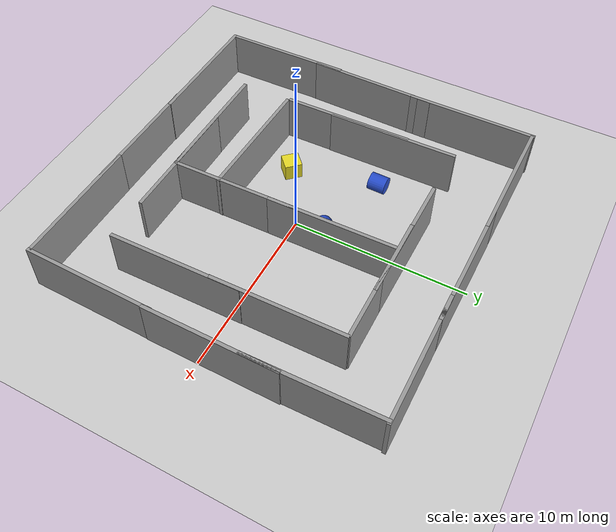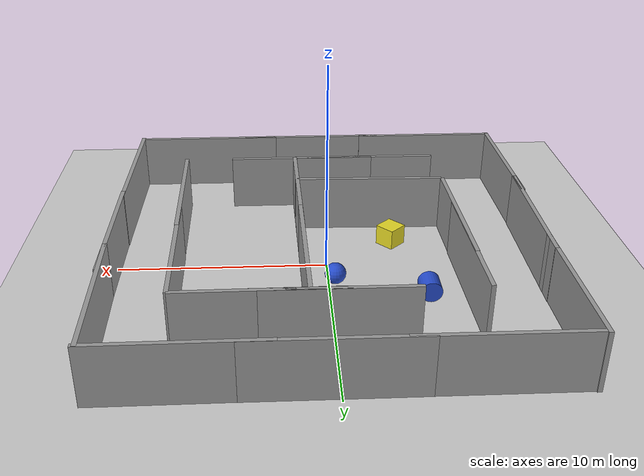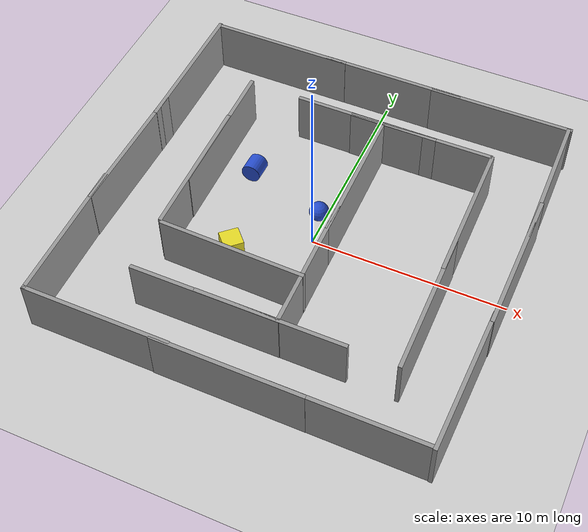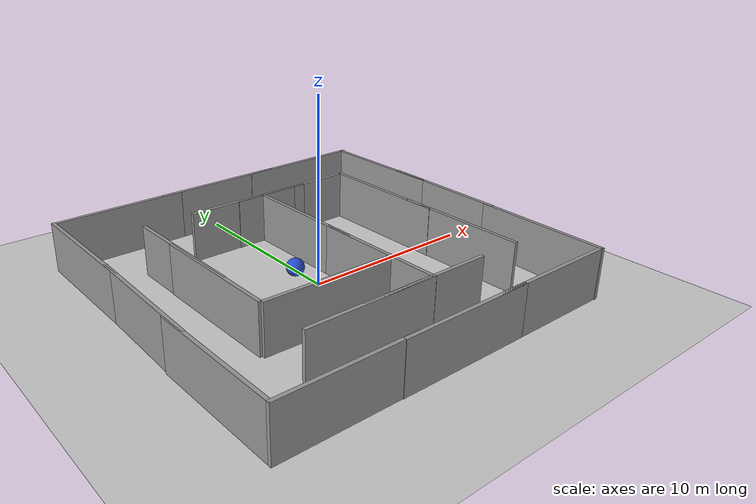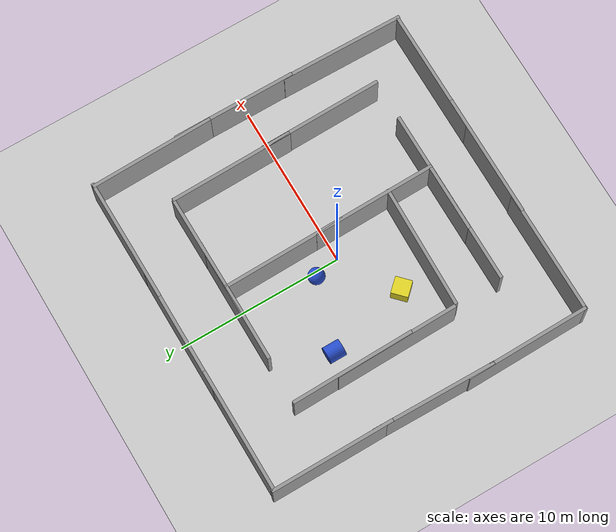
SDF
<sdf version="1.6">
 <world name="default">
  <light name="sun" type="directional">
   <pose>0 0 10 0 -0 0</pose>
   <diffuse>0.8 0.8 0.8 1</diffuse>
   <specular>0.2 0.2 0.2 1</specular>
   <attenuation>
    <range>1000</range>
    <constant>0.9</constant>
    <linear>0.01</linear>
    <quadratic>0.001</quadratic>
   </attenuation>
   <direction>-0.5 0.1 -0.9</direction>
  </light>
  <model name="ground_plane">
   <static>1</static>
   <link name="link">
    <collision name="collision">
     <geometry><plane><normal>0 0 1</normal><size>100 100</size></plane></geometry>
     <surface><friction><ode><mu>100</mu><mu2>50</mu2></ode></friction></surface>
    </collision>
    <visual name="visual">
     <cast_shadows>0</cast_shadows>
     <geometry><plane><normal>0 0 1</normal><size>100 100</size></plane></geometry>
     <material>
      <script><uri>file://media/materials/scripts/gazebo.material</uri><name>Gazebo/Grey</name></script>
     </material>
    </visual>
    <velocity_decay><linear>0</linear><angular>0</angular></velocity_decay>
   </link>
  </model>
  <physics name="default_physics" default="0" type="ode">
   <max_step_size>0.001</max_step_size>
   <real_time_factor>1</real_time_factor>
   <real_time_update_rate>1000</real_time_update_rate>
  </physics>
  <scene><ambient>0.4 0.4 0.4 1</ambient><background>0.7 0.7 0.7 1</background><shadows>1</shadows></scene>
  <spherical_coordinates>
   <surface_model>EARTH_WGS84</surface_model>
   <latitude_deg>0</latitude_deg>
   <longitude_deg>0</longitude_deg>
   <elevation>0</elevation>
   <heading_deg>0</heading_deg>
  </spherical_coordinates>
  <model name="grey_wall">
   <static>1</static>
   <link name="link">
    <pose>0 0 1.4 0 -0 0</pose>
    <collision name="collision"><geometry><box><size>7.5 0.2 2.8</size></box></geometry></collision>
    <visual name="visual">
     <cast_shadows>0</cast_shadows>
     <geometry><box><size>7.5 0.2 2.8</size></box></geometry>
     <material>
      <script>
       <uri>model://grey_wall/materials/scripts</uri>
       <uri>model://grey_wall/materials/textures</uri>
       <name>vrc/grey_wall</name>
      </script>
     </material>
    </visual>
    <velocity_decay><linear>0</linear><angular>0</angular></velocity_decay>
   </link>
   <pose>-6.15914 9.7448 0 0 -0 0</pose>
  </model>
  <model name="grey_wall_0">
   <static>1</static>
   <link name="link">
    <pose>0 0 1.4 0 -0 0</pose>
    <collision name="collision"><geometry><box><size>7.5 0.2 2.8</size></box></geometry></collision>
    <visual name="visual">
     <cast_shadows>0</cast_shadows>
     <geometry><box><size>7.5 0.2 2.8</size></box></geometry>
     <material>
      <script>
       <uri>model://grey_wall/materials/scripts</uri>
       <uri>model://grey_wall/materials/textures</uri>
       <name>vrc/grey_wall</name>
      </script>
     </material>
    </visual>
    <velocity_decay><linear>0</linear><angular>0</angular></velocity_decay>
   </link>
   <pose>-6.21165 -9.703 0 0 -0 0</pose>
  </model>
  <model name="grey_wall_1">
   <static>1</static>
   <link name="link">
    <pose>0 0 1.4 0 -0 0</pose>
    <collision name="collision"><geometry><box><size>7.5 0.2 2.8</size></box></geometry></collision>
    <visual name="visual">
     <cast_shadows>0</cast_shadows>
     <geometry><box><size>7.5 0.2 2.8</size></box></geometry>
     <material>
      <script>
       <uri>model://grey_wall/materials/scripts</uri>
       <uri>model://grey_wall/materials/textures</uri>
       <name>vrc/grey_wall</name>
      </script>
     </material>
    </visual>
    <velocity_decay><linear>0</linear><angular>0</angular></velocity_decay>
   </link>
   <pose>-9.91604 -6.01841 0 0 0 -1.55564</pose>
  </model>
  <model name="grey_wall_2">
   <static>1</static>
   <link name="link">
    <pose>0 0 1.4 0 -0 0</pose>
    <collision name="collision"><geometry><box><size>7.5 0.2 2.8</size></box></geometry></collision>
    <visual name="visual">
     <cast_shadows>0</cast_shadows>
     <geometry><box><size>7.5 0.2 2.8</size></box></geometry>
     <material>
      <script>
       <uri>model://grey_wall/materials/scripts</uri>
       <uri>model://grey_wall/materials/textures</uri>
       <name>vrc/grey_wall</name>
      </script>
     </material>
    </visual>
    <velocity_decay><linear>0</linear><angular>0</angular></velocity_decay>
   </link>
   <pose>-2.36047 -6.71034 0 0 -0 0</pose>
  </model>
  <model name="grey_wall_3">
   <static>1</static>
   <link name="link">
    <pose>0 0 1.4 0 -0 0</pose>
    <collision name="collision"><geometry><box><size>7.5 0.2 2.8</size></box></geometry></collision>
    <visual name="visual">
     <cast_shadows>0</cast_shadows>
     <geometry><box><size>7.5 0.2 2.8</size></box></geometry>
     <material>
      <script>
       <uri>model://grey_wall/materials/scripts</uri>
       <uri>model://grey_wall/materials/textures</uri>
       <name>vrc/grey_wall</name>
      </script>
     </material>
    </visual>
    <velocity_decay><linear>0</linear><angular>0</angular></velocity_decay>
   </link>
   <pose>9.84269 6.09226 0.00212 0 0 -1.54587</pose>
  </model>
  <model name="grey_wall_4">
   <static>1</static>
   <link name="link">
    <pose>0 0 1.4 0 -0 0</pose>
    <collision name="collision"><geometry><box><size>7.5 0.2 2.8</size></box></geometry></collision>
    <visual name="visual">
     <cast_shadows>0</cast_shadows>
     <geometry><box><size>7.5 0.2 2.8</size></box></geometry>
     <material>
      <script>
       <uri>model://grey_wall/materials/scripts</uri>
       <uri>model://grey_wall/materials/textures</uri>
       <name>vrc/grey_wall</name>
      </script>
     </material>
    </visual>
    <velocity_decay><linear>0</linear><angular>0</angular></velocity_decay>
   </link>
   <pose>6.04797 -9.73342 0 0 -0 0</pose>
  </model>
  <model name="grey_wall_5">
   <static>1</static>
   <link name="link">
    <pose>0 0 1.4 0 -0 0</pose>
    <collision name="collision"><geometry><box><size>7.5 0.2 2.8</size></box></geometry></collision>
    <visual name="visual">
     <cast_shadows>0</cast_shadows>
     <geometry><box><size>7.5 0.2 2.8</size></box></geometry>
     <material>
      <script>
       <uri>model://grey_wall/materials/scripts</uri>
       <uri>model://grey_wall/materials/textures</uri>
       <name>vrc/grey_wall</name>
      </script>
     </material>
    </visual>
    <velocity_decay><linear>0</linear><angular>0</angular></velocity_decay>
   </link>
   <pose>-6.24263 -0.010871 0 0 -0 1.58991</pose>
  </model>
  <model name="grey_wall_6">
   <static>1</static>
   <link name="link">
    <pose>0 0 1.4 0 -0 0</pose>
    <collision name="collision"><geometry><box><size>7.5 0.2 2.8</size></box></geometry></collision>
    <visual name="visual">
     <cast_shadows>0</cast_shadows>
     <geometry><box><size>7.5 0.2 2.8</size></box></geometry>
     <material>
      <script>
       <uri>model://grey_wall/materials/scripts</uri>
       <uri>model://grey_wall/materials/textures</uri>
       <name>vrc/grey_wall</name>
      </script>
     </material>
    </visual>
    <velocity_decay><linear>0</linear><angular>0</angular></velocity_decay>
   </link>
   <pose>0.235191 9.75265 0 0 -0 0</pose>
  </model>
  <gravity>0 0 -9.8</gravity>
  <magnetic_field>6e-06 2.3e-05 -4.2e-05</magnetic_field>
  <atmosphere type="adiabatic"/>
  <audio><device>default</device></audio>
  <model name="grey_wall_1_clone">
   <static>1</static>
   <link name="link">
    <pose>0 0 1.4 0 -0 0</pose>
    <collision name="collision"><geometry><box><size>7.5 0.2 2.8</size></box></geometry></collision>
    <visual name="visual">
     <cast_shadows>0</cast_shadows>
     <geometry><box><size>7.5 0.2 2.8</size></box></geometry>
     <material>
      <script>
       <uri>model://grey_wall/materials/scripts</uri>
       <uri>model://grey_wall/materials/textures</uri>
       <name>vrc/grey_wall</name>
      </script>
     </material>
    </visual>
    <velocity_decay><linear>0</linear><angular>0</angular></velocity_decay>
   </link>
   <pose>-9.88284 -0.130124 0 0 0 -1.58359</pose>
  </model>
  <model name="grey_wall_3_clone">
   <static>1</static>
   <link name="link">
    <pose>0 0 1.4 0 -0 0</pose>
    <collision name="collision"><geometry><box><size>7.5 0.2 2.8</size></box></geometry></collision>
    <visual name="visual">
     <cast_shadows>0</cast_shadows>
     <geometry><box><size>7.5 0.2 2.8</size></box></geometry>
     <material>
      <script>
       <uri>model://grey_wall/materials/scripts</uri>
       <uri>model://grey_wall/materials/textures</uri>
       <name>vrc/grey_wall</name>
      </script>
     </material>
    </visual>
    <velocity_decay><linear>0</linear><angular>0</angular></velocity_decay>
   </link>
   <pose>9.93687 0.821066 0.00212 0 0 -1.57102</pose>
  </model>
  <model name="grey_wall_1_clone_clone">
   <static>1</static>
   <link name="link">
    <pose>0 0 1.4 0 -0 0</pose>
    <collision name="collision"><geometry><box><size>7.5 0.2 2.8</size></box></geometry></collision>
    <visual name="visual">
     <cast_shadows>0</cast_shadows>
     <geometry><box><size>7.5 0.2 2.8</size></box></geometry>
     <material>
      <script>
       <uri>model://grey_wall/materials/scripts</uri>
       <uri>model://grey_wall/materials/textures</uri>
       <name>vrc/grey_wall</name>
      </script>
     </material>
    </visual>
    <velocity_decay><linear>0</linear><angular>0</angular></velocity_decay>
   </link>
   <pose>-9.8631 6.14852 0 0 0 -1.56529</pose>
  </model>
  <model name="grey_wall_1_clone_clone_0">
   <static>1</static>
   <link name="link">
    <pose>0 0 1.4 0 -0 0</pose>
    <collision name="collision"><geometry><box><size>7.5 0.2 2.8</size></box></geometry></collision>
    <visual name="visual">
     <cast_shadows>0</cast_shadows>
     <geometry><box><size>7.5 0.2 2.8</size></box></geometry>
     <material>
      <script>
       <uri>model://grey_wall/materials/scripts</uri>
       <uri>model://grey_wall/materials/textures</uri>
       <name>vrc/grey_wall</name>
      </script>
     </material>
    </visual>
    <velocity_decay><linear>0</linear><angular>0</angular></velocity_decay>
   </link>
   <pose>6.18211 9.75952 0 0 0 -3.13624</pose>
  </model>
  <model name="grey_wall_1_clone_clone_1">
   <static>1</static>
   <link name="link">
    <pose>0 0 1.4 0 -0 0</pose>
    <collision name="collision"><geometry><box><size>7.5 0.2 2.8</size></box></geometry></collision>
    <visual name="visual">
     <cast_shadows>0</cast_shadows>
     <geometry><box><size>7.5 0.2 2.8</size></box></geometry>
     <material>
      <script>
       <uri>model://grey_wall/materials/scripts</uri>
       <uri>model://grey_wall/materials/textures</uri>
       <name>vrc/grey_wall</name>
      </script>
     </material>
    </visual>
    <velocity_decay><linear>0</linear><angular>0</angular></velocity_decay>
   </link>
   <pose>9.86952 -6.11438 0 0 0 -1.58359</pose>
  </model>
  <model name="grey_wall_1_clone_clone_2">
   <static>1</static>
   <link name="link">
    <pose>0 0 1.4 0 -0 0</pose>
    <collision name="collision"><geometry><box><size>7.5 0.2 2.8</size></box></geometry></collision>
    <visual name="visual">
     <cast_shadows>0</cast_shadows>
     <geometry><box><size>7.5 0.2 2.8</size></box></geometry>
     <material>
      <script>
       <uri>model://grey_wall/materials/scripts</uri>
       <uri>model://grey_wall/materials/textures</uri>
       <name>vrc/grey_wall</name>
      </script>
     </material>
    </visual>
    <velocity_decay><linear>0</linear><angular>0</angular></velocity_decay>
   </link>
   <pose>0.291242 -9.73574 -0 0 -0 3.14045</pose>
  </model>
  <model name="grey_wall_2_clone">
   <static>1</static>
   <link name="link">
    <pose>0 0 1.4 0 -0 0</pose>
    <collision name="collision"><geometry><box><size>7.5 0.2 2.8</size></box></geometry></collision>
    <visual name="visual">
     <cast_shadows>0</cast_shadows>
     <geometry><box><size>7.5 0.2 2.8</size></box></geometry>
     <material>
      <script>
       <uri>model://grey_wall/materials/scripts</uri>
       <uri>model://grey_wall/materials/textures</uri>
       <name>vrc/grey_wall</name>
      </script>
     </material>
    </visual>
    <velocity_decay><linear>0</linear><angular>0</angular></velocity_decay>
   </link>
   <pose>0.159837 6.38955 0 0 -0 0</pose>
  </model>
  <model name="grey_wall_5_clone">
   <static>1</static>
   <link name="link">
    <pose>0 0 1.4 0 -0 0</pose>
    <collision name="collision"><geometry><box><size>7.5 0.2 2.8</size></box></geometry></collision>
    <visual name="visual">
     <cast_shadows>0</cast_shadows>
     <geometry><box><size>7.5 0.2 2.8</size></box></geometry>
     <material>
      <script>
       <uri>model://grey_wall/materials/scripts</uri>
       <uri>model://grey_wall/materials/textures</uri>
       <name>vrc/grey_wall</name>
      </script>
     </material>
    </visual>
    <velocity_decay><linear>0</linear><angular>0</angular></velocity_decay>
   </link>
   <pose>-6.2665 2.77185 0 0 -0 1.58991</pose>
  </model>
  <model name="grey_wall_5_clone_0">
   <static>1</static>
   <link name="link">
    <pose>0 0 1.4 0 -0 0</pose>
    <collision name="collision"><geometry><box><size>7.5 0.2 2.8</size></box></geometry></collision>
    <visual name="visual">
     <cast_shadows>0</cast_shadows>
     <geometry><box><size>7.5 0.2 2.8</size></box></geometry>
     <material>
      <script>
       <uri>model://grey_wall/materials/scripts</uri>
       <uri>model://grey_wall/materials/textures</uri>
       <name>vrc/grey_wall</name>
      </script>
     </material>
    </visual>
    <velocity_decay><linear>0</linear><angular>0</angular></velocity_decay>
   </link>
   <pose>1.23701 -3.05596 0 0 -0 1.58991</pose>
  </model>
  <model name="grey_wall_5_clone_1">
   <static>1</static>
   <link name="link">
    <pose>0 0 1.4 0 -0 0</pose>
    <collision name="collision"><geometry><box><size>7.5 0.2 2.8</size></box></geometry></collision>
    <visual name="visual">
     <cast_shadows>0</cast_shadows>
     <geometry><box><size>7.5 0.2 2.8</size></box></geometry>
     <material>
      <script>
       <uri>model://grey_wall/materials/scripts</uri>
       <uri>model://grey_wall/materials/textures</uri>
       <name>vrc/grey_wall</name>
      </script>
     </material>
    </visual>
    <velocity_decay><linear>0</linear><angular>0</angular></velocity_decay>
   </link>
   <pose>-2.37707 -3.91438 0 0 0 -0.023142</pose>
  </model>
  <model name="grey_wall_5_clone_2">
   <static>1</static>
   <link name="link">
    <pose>0 0 1.4 0 -0 0</pose>
    <collision name="collision"><geometry><box><size>7.5 0.2 2.8</size></box></geometry></collision>
    <visual name="visual">
     <cast_shadows>0</cast_shadows>
     <geometry><box><size>7.5 0.2 2.8</size></box></geometry>
     <material>
      <script>
       <uri>model://grey_wall/materials/scripts</uri>
       <uri>model://grey_wall/materials/textures</uri>
       <name>vrc/grey_wall</name>
      </script>
     </material>
    </visual>
    <velocity_decay><linear>0</linear><angular>0</angular></velocity_decay>
   </link>
   <pose>6.90049 2.70601 0 0 -0 1.58991</pose>
  </model>
  <model name="grey_wall_5_clone_3">
   <static>1</static>
   <link name="link">
    <pose>0 0 1.4 0 -0 0</pose>
    <collision name="collision"><geometry><box><size>7.5 0.2 2.8</size></box></geometry></collision>
    <visual name="visual">
     <cast_shadows>0</cast_shadows>
     <geometry><box><size>7.5 0.2 2.8</size></box></geometry>
     <material>
      <script>
       <uri>model://grey_wall/materials/scripts</uri>
       <uri>model://grey_wall/materials/textures</uri>
       <name>vrc/grey_wall</name>
      </script>
     </material>
    </visual>
    <velocity_decay><linear>0</linear><angular>0</angular></velocity_decay>
   </link>
   <pose>3.08317 6.38861 0 0 -0 0.007398</pose>
  </model>
  <model name="grey_wall_5_clone_4">
   <static>1</static>
   <link name="link">
    <pose>0 0 1.4 0 -0 0</pose>
    <collision name="collision"><geometry><box><size>7.5 0.2 2.8</size></box></geometry></collision>
    <visual name="visual">
     <cast_shadows>0</cast_shadows>
     <geometry><box><size>7.5 0.2 2.8</size></box></geometry>
     <material>
      <script>
       <uri>model://grey_wall/materials/scripts</uri>
       <uri>model://grey_wall/materials/textures</uri>
       <name>vrc/grey_wall</name>
      </script>
     </material>
    </visual>
    <velocity_decay><linear>0</linear><angular>0</angular></velocity_decay>
   </link>
   <pose>1.13091 2.7068 0 0 -0 1.58991</pose>
  </model>
  <model name="grey_wall_5_clone_2_clone">
   <static>1</static>
   <link name="link">
    <pose>0 0 1.4 0 -0 0</pose>
    <collision name="collision"><geometry><box><size>7.5 0.2 2.8</size></box></geometry></collision>
    <visual name="visual">
     <cast_shadows>0</cast_shadows>
     <geometry><box><size>7.5 0.2 2.8</size></box></geometry>
     <material>
      <script>
       <uri>model://grey_wall/materials/scripts</uri>
       <uri>model://grey_wall/materials/textures</uri>
       <name>vrc/grey_wall</name>
      </script>
     </material>
    </visual>
    <velocity_decay><linear>0</linear><angular>0</angular></velocity_decay>
   </link>
   <pose>7.03149 -3.03185 0 0 -0 1.58991</pose>
  </model>
  <model name="grey_wall_2_clone_0">
   <static>1</static>
   <link name="link">
    <pose>0 0 1.4 0 -0 0</pose>
    <collision name="collision"><geometry><box><size>7.5 0.2 2.8</size></box></geometry></collision>
    <visual name="visual">
     <cast_shadows>0</cast_shadows>
     <geometry><box><size>7.5 0.2 2.8</size></box></geometry>
     <material>
      <script>
       <uri>model://grey_wall/materials/scripts</uri>
       <uri>model://grey_wall/materials/textures</uri>
       <name>vrc/grey_wall</name>
      </script>
     </material>
    </visual>
    <velocity_decay><linear>0</linear><angular>0</angular></velocity_decay>
   </link>
   <pose>0.9218 -6.69941 0 0 -0 0</pose>
  </model>
  <light name="user_spot_light_0" type="spot">
   <pose>-0.377616 -5.07779 1 0 -0 0</pose>
   <diffuse>0.5 0.5 0.5 1</diffuse>
   <specular>0.1 0.1 0.1 1</specular>
   <direction>0 0 -1</direction>
   <attenuation>
    <range>20</range>
    <constant>0.5</constant>
    <linear>0.01</linear>
    <quadratic>0.001</quadratic>
   </attenuation>
   <cast_shadows>0</cast_shadows>
   <spot><inner_angle>0.6</inner_angle><outer_angle>1</outer_angle><falloff>1</falloff></spot>
  </light>
  <model name="unit_cylinder_blue">
   <link name="link">
    <inertial>
     <mass>1</mass>
     <inertia><ixx>0.145833</ixx><ixy>0</ixy><ixz>0</ixz><iyy>0.145833</iyy><iyz>0</iyz><izz>0.125</izz></inertia>
    </inertial>
    <pose>0 0 0 1.54704 -0 0</pose>
    <visual name="visual">
     <geometry><cylinder><radius>0.5</radius><length>1</length></cylinder></geometry>
     <material>
      <script><name>Gazebo/Blue</name><uri>file://media/materials/scripts/gazebo.material</uri></script>
      <shader type="vertex"><normal_map>__default__</normal_map></shader>
      <ambient>0 0 1 1</ambient>
      <diffuse>0 0 1 1</diffuse>
      <specular>0.1 0.1 0.1 1</specular>
      <emissive>0 0 0 1</emissive>
     </material>
    </visual>
    <collision name="collision">
     <geometry><cylinder><radius>0.5</radius><length>1</length></cylinder></geometry>
     <surface>
      <friction>
       <ode><mu>1</mu><mu2>1</mu2><fdir1>0 0 0</fdir1><slip1>0</slip1><slip2>0</slip2></ode>
       <torsional>
        <coefficient>1</coefficient>
        <patch_radius>0</patch_radius>
        <surface_radius>0</surface_radius>
        <use_patch_radius>1</use_patch_radius>
        <ode><slip>0</slip></ode>
       </torsional>
      </friction>
      <bounce><restitution_coefficient>0</restitution_coefficient><threshold>1e+06</threshold></bounce>
      <contact>
       <collide_without_contact>0</collide_without_contact>
       <collide_without_contact_bitmask>1</collide_without_contact_bitmask>
       <collide_bitmask>1</collide_bitmask>
       <ode>
        <soft_cfm>0</soft_cfm>
        <soft_erp>0.2</soft_erp>
        <kp>1e+13</kp>
        <kd>1</kd>
        <max_vel>0.01</max_vel>
        <min_depth>0</min_depth>
       </ode>
       <bullet>
        <split_impulse>1</split_impulse>
        <split_impulse_penetration_threshold>-0.01</split_impulse_penetration_threshold>
        <soft_cfm>0</soft_cfm>
        <soft_erp>0.2</soft_erp>
        <kp>1e+13</kp>
        <kd>1</kd>
       </bullet>
      </contact>
     </surface>
    </collision>
   </link>
   <static>0</static>
   <pose>-4.53656 2.90074 0.5 0 -0 0</pose>
  </model>
  <model name="unit_sphere_blue">
   <link name="link">
    <inertial>
     <mass>1</mass>
     <inertia><ixx>0.1</ixx><ixy>0</ixy><ixz>0</ixz><iyy>0.1</iyy><iyz>0</iyz><izz>0.1</izz></inertia>
    </inertial>
    <visual name="visual">
     <geometry><sphere><radius>0.5</radius></sphere></geometry>
     <material>
      <script><name>Gazebo/Blue</name><uri>file://media/materials/scripts/gazebo.material</uri></script>
      <shader type="vertex"><normal_map>__default__</normal_map></shader>
      <ambient>0 0 1 1</ambient>
      <diffuse>0 0 1 1</diffuse>
      <specular>0.1 0.1 0.1 1</specular>
      <emissive>0 0 0 1</emissive>
     </material>
    </visual>
    <collision name="collision">
     <geometry><sphere><radius>0.5</radius></sphere></geometry>
     <surface>
      <friction>
       <ode><mu>1</mu><mu2>1</mu2><fdir1>0 0 0</fdir1><slip1>0</slip1><slip2>0</slip2></ode>
       <torsional>
        <coefficient>1</coefficient>
        <patch_radius>0</patch_radius>
        <surface_radius>0</surface_radius>
        <use_patch_radius>1</use_patch_radius>
        <ode><slip>0</slip></ode>
       </torsional>
      </friction>
      <bounce><restitution_coefficient>0</restitution_coefficient><threshold>1e+06</threshold></bounce>
      <contact>
       <collide_without_contact>0</collide_without_contact>
       <collide_without_contact_bitmask>1</collide_without_contact_bitmask>
       <collide_bitmask>1</collide_bitmask>
       <ode>
        <soft_cfm>0</soft_cfm>
        <soft_erp>0.2</soft_erp>
        <kp>1e+13</kp>
        <kd>1</kd>
        <max_vel>0.01</max_vel>
        <min_depth>0</min_depth>
       </ode>
       <bullet>
        <split_impulse>1</split_impulse>
        <split_impulse_penetration_threshold>-0.01</split_impulse_penetration_threshold>
        <soft_cfm>0</soft_cfm>
        <soft_erp>0.2</soft_erp>
        <kp>1e+13</kp>
        <kd>1</kd>
       </bullet>
      </contact>
     </surface>
    </collision>
   </link>
   <static>0</static>
   <pose>-0.328482 1.55143 0.5 0 -0 0</pose>
  </model>
  <model name="unit_box_yellow">
   <link name="link">
    <inertial>
     <mass>1</mass>
     <inertia>
      <ixx>0.166667</ixx>
      <ixy>0</ixy>
      <ixz>0</ixz>
      <iyy>0.166667</iyy>
      <iyz>0</iyz>
      <izz>0.166667</izz>
     </inertia>
    </inertial>
    <visual name="visual">
     <geometry><box><size>1 1 1</size></box></geometry>
     <material>
      <script><name>Gazebo/Yellow</name><uri>file://media/materials/scripts/gazebo.material</uri></script>
      <shader type="vertex"><normal_map>__default__</normal_map></shader>
      <ambient>1 1 0 1</ambient>
      <diffuse>1 1 0 1</diffuse>
      <emissive>0 0 0 1</emissive>
     </material>
    </visual>
    <collision name="collision">
     <geometry><box><size>1 1 1</size></box></geometry>
     <surface>
      <friction>
       <ode><mu>1</mu><mu2>1</mu2><fdir1>0 0 0</fdir1><slip1>0</slip1><slip2>0</slip2></ode>
       <torsional>
        <coefficient>1</coefficient>
        <patch_radius>0</patch_radius>
        <surface_radius>0</surface_radius>
        <use_patch_radius>1</use_patch_radius>
        <ode><slip>0</slip></ode>
       </torsional>
      </friction>
      <bounce><restitution_coefficient>0</restitution_coefficient><threshold>1e+06</threshold></bounce>
      <contact>
       <collide_without_contact>0</collide_without_contact>
       <collide_without_contact_bitmask>1</collide_without_contact_bitmask>
       <collide_bitmask>1</collide_bitmask>
       <ode>
        <soft_cfm>0</soft_cfm>
        <soft_erp>0.2</soft_erp>
        <kp>1e+13</kp>
        <kd>1</kd>
        <max_vel>0.01</max_vel>
        <min_depth>0</min_depth>
       </ode>
       <bullet>
        <split_impulse>1</split_impulse>
        <split_impulse_penetration_threshold>-0.01</split_impulse_penetration_threshold>
        <soft_cfm>0</soft_cfm>
        <soft_erp>0.2</soft_erp>
        <kp>1e+13</kp>
        <kd>1</kd>
       </bullet>
      </contact>
     </surface>
    </collision>
   </link>
   <static>0</static>
   <pose>-3.37386 -2.10066 0.5 0 -0 0.758843</pose>
  </model>
 </world>
</sdf>
